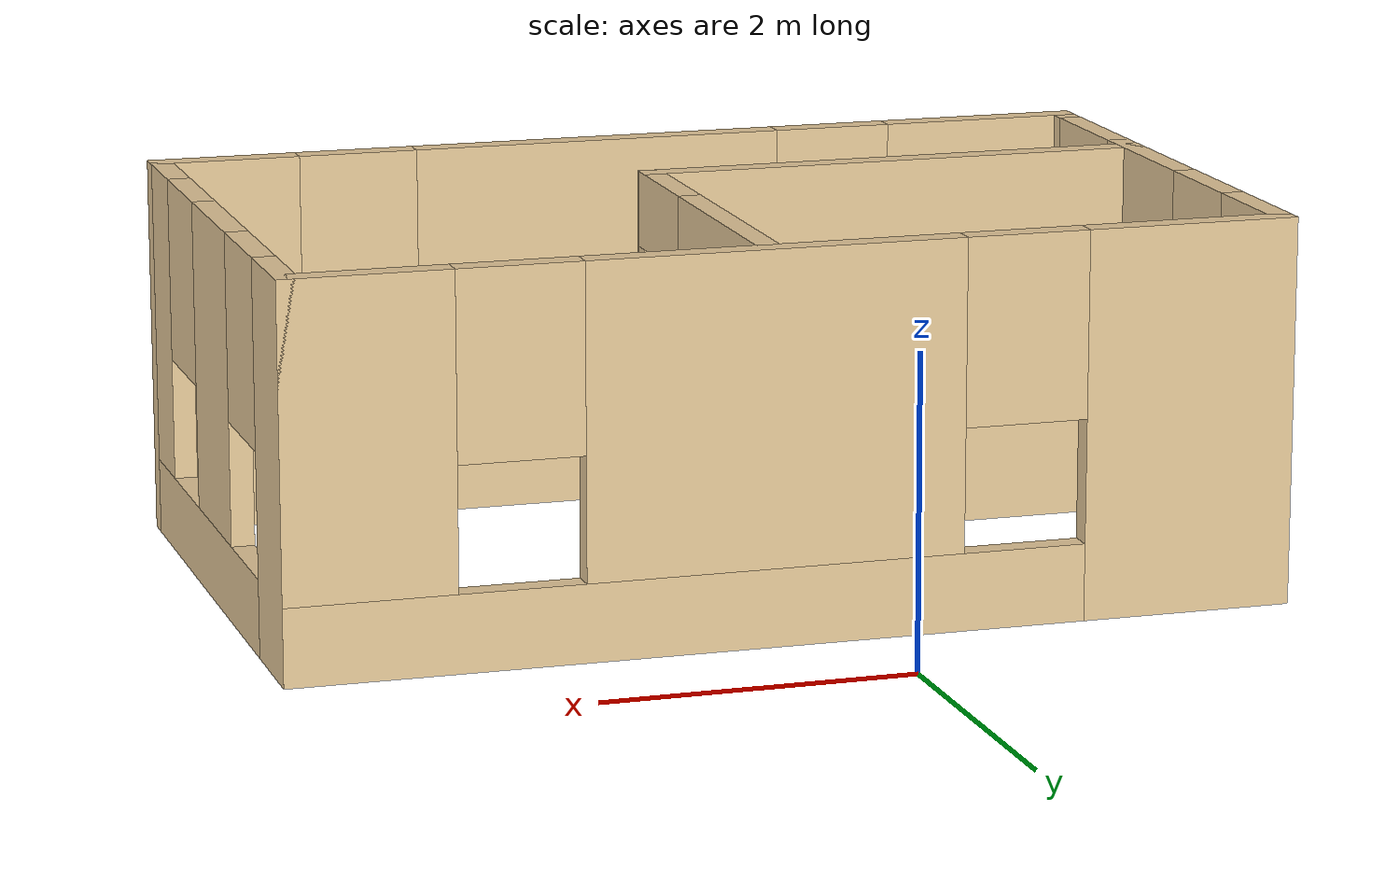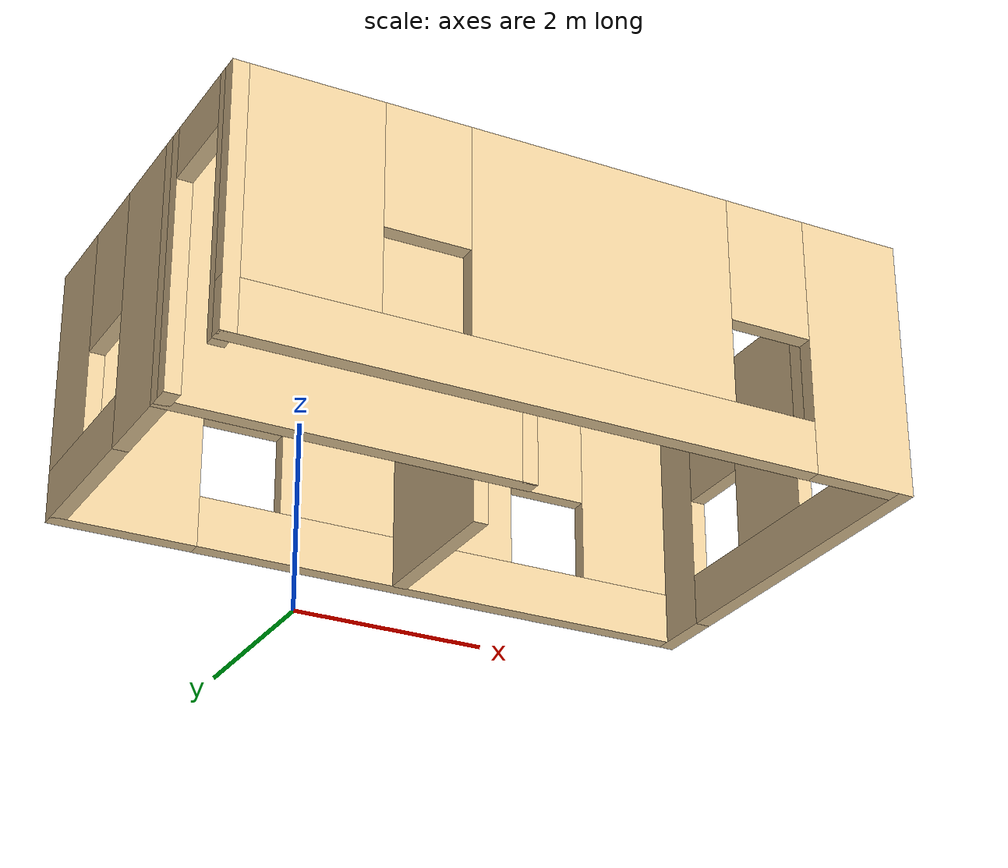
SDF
<?xml version='1.0'?>
<sdf version='1.7'>
  <model name='home'>
    <pose>0.475 -2.4125 0 0 -0 0</pose>
    <link name='Wall_0'>
      <pose>-0 1.5125 0 0 -0 0</pose>
      <visual name='Wall_0_Visual_0'>
        <pose>-2.5575 0 1.25 0 -0 0</pose>
        <geometry>
          <box>
            <size>1.385 0.15 2.5</size>
          </box>
        </geometry>
        <material>
          <script>
            <uri>file://media/materials/scripts/gazebo.material</uri>
            <name>Gazebo/Grey</name>
          </script>
          <ambient>0.921569 0.807843 0.615686 1</ambient>
        </material>
        <meta>
          <layer>0</layer>
        </meta>
      </visual>
      <collision name='Wall_0_Collision_0'>
        <geometry>
          <box>
            <size>1.385 0.15 2.5</size>
          </box>
        </geometry>
        <pose>-2.5575 0 1.25 0 -0 0</pose>
      </collision>
      <visual name='Wall_0_Visual_1'>
        <pose>0.6925 0 0.25 0 -0 0</pose>
        <geometry>
          <box>
            <size>5.115 0.15 0.5</size>
          </box>
        </geometry>
        <material>
          <script>
            <uri>file://media/materials/scripts/gazebo.material</uri>
            <name>Gazebo/Grey</name>
          </script>
          <ambient>0.921569 0.807843 0.615686 1</ambient>
        </material>
        <meta>
          <layer>0</layer>
        </meta>
      </visual>
      <collision name='Wall_0_Collision_1'>
        <geometry>
          <box>
            <size>5.115 0.15 0.5</size>
          </box>
        </geometry>
        <pose>0.6925 0 0.25 0 -0 0</pose>
      </collision>
      <visual name='Wall_0_Visual_2'>
        <pose>0.15 0 1.5 0 -0 0</pose>
        <geometry>
          <box>
            <size>2.43 0.15 2</size>
          </box>
        </geometry>
        <material>
          <script>
            <uri>file://media/materials/scripts/gazebo.material</uri>
            <name>Gazebo/Grey</name>
          </script>
          <ambient>0.921569 0.807843 0.615686 1</ambient>
        </material>
        <meta>
          <layer>0</layer>
        </meta>
      </visual>
      <collision name='Wall_0_Collision_2'>
        <geometry>
          <box>
            <size>2.43 0.15 2</size>
          </box>
        </geometry>
        <pose>0.15 0 1.5 0 -0 0</pose>
      </collision>
      <visual name='Wall_0_Visual_3'>
        <pose>2.7075 0 1.5 0 -0 0</pose>
        <geometry>
          <box>
            <size>1.085 0.15 2</size>
          </box>
        </geometry>
        <material>
          <script>
            <uri>file://media/materials/scripts/gazebo.material</uri>
            <name>Gazebo/Grey</name>
          </script>
          <ambient>0.921569 0.807843 0.615686 1</ambient>
        </material>
        <meta>
          <layer>0</layer>
        </meta>
      </visual>
      <collision name='Wall_0_Collision_3'>
        <geometry>
          <box>
            <size>1.085 0.15 2</size>
          </box>
        </geometry>
        <pose>2.7075 0 1.5 0 -0 0</pose>
      </collision>
      <visual name='Wall_0_Visual_4'>
        <pose>-1.465 0 1.9 0 -0 0</pose>
        <geometry>
          <box>
            <size>0.8 0.15 1.2</size>
          </box>
        </geometry>
        <material>
          <script>
            <uri>file://media/materials/scripts/gazebo.material</uri>
            <name>Gazebo/Grey</name>
          </script>
          <ambient>0.921569 0.807843 0.615686 1</ambient>
        </material>
        <meta>
          <layer>0</layer>
        </meta>
      </visual>
      <collision name='Wall_0_Collision_4'>
        <geometry>
          <box>
            <size>0.8 0.15 1.2</size>
          </box>
        </geometry>
        <pose>-1.465 0 1.9 0 -0 0</pose>
      </collision>
      <visual name='Wall_0_Visual_5'>
        <pose>1.765 0 1.9 0 -0 0</pose>
        <geometry>
          <box>
            <size>0.8 0.15 1.2</size>
          </box>
        </geometry>
        <material>
          <script>
            <uri>file://media/materials/scripts/gazebo.material</uri>
            <name>Gazebo/Grey</name>
          </script>
          <ambient>0.921569 0.807843 0.615686 1</ambient>
        </material>
        <meta>
          <layer>0</layer>
        </meta>
      </visual>
      <collision name='Wall_0_Collision_5'>
        <geometry>
          <box>
            <size>0.8 0.15 1.2</size>
          </box>
        </geometry>
        <pose>1.765 0 1.9 0 -0 0</pose>
      </collision>
    </link>
    <link name='Wall_1'>
      <pose>3.175 -0.4125 0 0 -0 -1.5708</pose>
      <visual name='Wall_1_Visual_0'>
        <pose>-1.6575 0 1.25 0 -0 0</pose>
        <geometry>
          <box>
            <size>0.685 0.15 2.5</size>
          </box>
        </geometry>
        <material>
          <script>
            <uri>file://media/materials/scripts/gazebo.material</uri>
            <name>Gazebo/Grey</name>
          </script>
          <ambient>0.921569 0.807843 0.615686 1</ambient>
        </material>
        <meta>
          <layer>0</layer>
        </meta>
      </visual>
      <collision name='Wall_1_Collision_0'>
        <geometry>
          <box>
            <size>0.685 0.15 2.5</size>
          </box>
        </geometry>
        <pose>-1.6575 0 1.25 0 -0 0</pose>
      </collision>
      <visual name='Wall_1_Visual_1'>
        <pose>0.3425 0 0.25 0 -0 0</pose>
        <geometry>
          <box>
            <size>3.315 0.15 0.5</size>
          </box>
        </geometry>
        <material>
          <script>
            <uri>file://media/materials/scripts/gazebo.material</uri>
            <name>Gazebo/Grey</name>
          </script>
          <ambient>0.921569 0.807843 0.615686 1</ambient>
        </material>
        <meta>
          <layer>0</layer>
        </meta>
      </visual>
      <collision name='Wall_1_Collision_1'>
        <geometry>
          <box>
            <size>3.315 0.15 0.5</size>
          </box>
        </geometry>
        <pose>0.3425 0 0.25 0 -0 0</pose>
      </collision>
      <visual name='Wall_1_Visual_2'>
        <pose>-0.005 0 1.5 0 -0 0</pose>
        <geometry>
          <box>
            <size>1.02 0.15 2</size>
          </box>
        </geometry>
        <material>
          <script>
            <uri>file://media/materials/scripts/gazebo.material</uri>
            <name>Gazebo/Grey</name>
          </script>
          <ambient>0.921569 0.807843 0.615686 1</ambient>
        </material>
        <meta>
          <layer>0</layer>
        </meta>
      </visual>
      <collision name='Wall_1_Collision_2'>
        <geometry>
          <box>
            <size>1.02 0.15 2</size>
          </box>
        </geometry>
        <pose>-0.005 0 1.5 0 -0 0</pose>
      </collision>
      <visual name='Wall_1_Visual_3'>
        <pose>1.6525 0 1.5 0 -0 0</pose>
        <geometry>
          <box>
            <size>0.695 0.15 2</size>
          </box>
        </geometry>
        <material>
          <script>
            <uri>file://media/materials/scripts/gazebo.material</uri>
            <name>Gazebo/Grey</name>
          </script>
          <ambient>0.921569 0.807843 0.615686 1</ambient>
        </material>
        <meta>
          <layer>0</layer>
        </meta>
      </visual>
      <collision name='Wall_1_Collision_3'>
        <geometry>
          <box>
            <size>0.695 0.15 2</size>
          </box>
        </geometry>
        <pose>1.6525 0 1.5 0 -0 0</pose>
      </collision>
      <visual name='Wall_1_Visual_4'>
        <pose>-0.915 0 1.9 0 -0 0</pose>
        <geometry>
          <box>
            <size>0.8 0.15 1.2</size>
          </box>
        </geometry>
        <material>
          <script>
            <uri>file://media/materials/scripts/gazebo.material</uri>
            <name>Gazebo/Grey</name>
          </script>
          <ambient>0.921569 0.807843 0.615686 1</ambient>
        </material>
        <meta>
          <layer>0</layer>
        </meta>
      </visual>
      <collision name='Wall_1_Collision_4'>
        <geometry>
          <box>
            <size>0.8 0.15 1.2</size>
          </box>
        </geometry>
        <pose>-0.915 0 1.9 0 -0 0</pose>
      </collision>
      <visual name='Wall_1_Visual_5'>
        <pose>0.905 0 1.9 0 -0 0</pose>
        <geometry>
          <box>
            <size>0.8 0.15 1.2</size>
          </box>
        </geometry>
        <material>
          <script>
            <uri>file://media/materials/scripts/gazebo.material</uri>
            <name>Gazebo/Grey</name>
          </script>
          <ambient>0.921569 0.807843 0.615686 1</ambient>
        </material>
        <meta>
          <layer>0</layer>
        </meta>
      </visual>
      <collision name='Wall_1_Collision_5'>
        <geometry>
          <box>
            <size>0.8 0.15 1.2</size>
          </box>
        </geometry>
        <pose>0.905 0 1.9 0 -0 0</pose>
      </collision>
    </link>
    <link name='Wall_2'>
      <pose>-0 -2.3375 0 0 -0 3.14159</pose>
      <visual name='Wall_2_Visual_0'>
        <pose>-2.7525 0 1.25 0 -0 0</pose>
        <geometry>
          <box>
            <size>0.995 0.15 2.5</size>
          </box>
        </geometry>
        <material>
          <script>
            <uri>file://media/materials/scripts/gazebo.material</uri>
            <name>Gazebo/Grey</name>
          </script>
          <ambient>0.921569 0.807843 0.615686 1</ambient>
        </material>
        <meta>
          <layer>0</layer>
        </meta>
      </visual>
      <collision name='Wall_2_Collision_0'>
        <geometry>
          <box>
            <size>0.995 0.15 2.5</size>
          </box>
        </geometry>
        <pose>-2.7525 0 1.25 0 -0 0</pose>
      </collision>
      <visual name='Wall_2_Visual_1'>
        <pose>0.4975 0 0.25 0 -0 0</pose>
        <geometry>
          <box>
            <size>5.505 0.15 0.5</size>
          </box>
        </geometry>
        <material>
          <script>
            <uri>file://media/materials/scripts/gazebo.material</uri>
            <name>Gazebo/Grey</name>
          </script>
          <ambient>0.921569 0.807843 0.615686 1</ambient>
        </material>
        <meta>
          <layer>0</layer>
        </meta>
      </visual>
      <collision name='Wall_2_Collision_1'>
        <geometry>
          <box>
            <size>5.505 0.15 0.5</size>
          </box>
        </geometry>
        <pose>0.4975 0 0.25 0 -0 0</pose>
      </collision>
      <visual name='Wall_2_Visual_2'>
        <pose>-0.19 0 1.5 0 -0 0</pose>
        <geometry>
          <box>
            <size>2.53 0.15 2</size>
          </box>
        </geometry>
        <material>
          <script>
            <uri>file://media/materials/scripts/gazebo.material</uri>
            <name>Gazebo/Grey</name>
          </script>
          <ambient>0.921569 0.807843 0.615686 1</ambient>
        </material>
        <meta>
          <layer>0</layer>
        </meta>
      </visual>
      <collision name='Wall_2_Collision_2'>
        <geometry>
          <box>
            <size>2.53 0.15 2</size>
          </box>
        </geometry>
        <pose>-0.19 0 1.5 0 -0 0</pose>
      </collision>
      <visual name='Wall_2_Visual_3'>
        <pose>2.5625 0 1.5 0 -0 0</pose>
        <geometry>
          <box>
            <size>1.375 0.15 2</size>
          </box>
        </geometry>
        <material>
          <script>
            <uri>file://media/materials/scripts/gazebo.material</uri>
            <name>Gazebo/Grey</name>
          </script>
          <ambient>0.921569 0.807843 0.615686 1</ambient>
        </material>
        <meta>
          <layer>0</layer>
        </meta>
      </visual>
      <collision name='Wall_2_Collision_3'>
        <geometry>
          <box>
            <size>1.375 0.15 2</size>
          </box>
        </geometry>
        <pose>2.5625 0 1.5 0 -0 0</pose>
      </collision>
      <visual name='Wall_2_Visual_4'>
        <pose>-1.855 0 1.9 0 -0 0</pose>
        <geometry>
          <box>
            <size>0.8 0.15 1.2</size>
          </box>
        </geometry>
        <material>
          <script>
            <uri>file://media/materials/scripts/gazebo.material</uri>
            <name>Gazebo/Grey</name>
          </script>
          <ambient>0.921569 0.807843 0.615686 1</ambient>
        </material>
        <meta>
          <layer>0</layer>
        </meta>
      </visual>
      <collision name='Wall_2_Collision_4'>
        <geometry>
          <box>
            <size>0.8 0.15 1.2</size>
          </box>
        </geometry>
        <pose>-1.855 0 1.9 0 -0 0</pose>
      </collision>
      <visual name='Wall_2_Visual_5'>
        <pose>1.475 0 1.9 0 -0 0</pose>
        <geometry>
          <box>
            <size>0.8 0.15 1.2</size>
          </box>
        </geometry>
        <material>
          <script>
            <uri>file://media/materials/scripts/gazebo.material</uri>
            <name>Gazebo/Grey</name>
          </script>
          <ambient>0.921569 0.807843 0.615686 1</ambient>
        </material>
        <meta>
          <layer>0</layer>
        </meta>
      </visual>
      <collision name='Wall_2_Collision_5'>
        <geometry>
          <box>
            <size>0.8 0.15 1.2</size>
          </box>
        </geometry>
        <pose>1.475 0 1.9 0 -0 0</pose>
      </collision>
    </link>
    <link name='Wall_3'>
      <pose>-3.175 -0.4125 0 0 -0 1.5708</pose>
      <visual name='Wall_3_Visual_0'>
        <pose>-1.8725 0 1.25 0 -0 0</pose>
        <geometry>
          <box>
            <size>0.255 0.15 2.5</size>
          </box>
        </geometry>
        <material>
          <script>
            <uri>file://media/materials/scripts/gazebo.material</uri>
            <name>Gazebo/Grey</name>
          </script>
          <ambient>0.921569 0.807843 0.615686 1</ambient>
        </material>
        <meta>
          <layer>0</layer>
        </meta>
      </visual>
      <collision name='Wall_3_Collision_0'>
        <geometry>
          <box>
            <size>0.255 0.15 2.5</size>
          </box>
        </geometry>
        <pose>-1.8725 0 1.25 0 -0 0</pose>
      </collision>
      <visual name='Wall_3_Visual_1'>
        <pose>-0.26 0 1.25 0 -0 0</pose>
        <geometry>
          <box>
            <size>1.17 0.15 2.5</size>
          </box>
        </geometry>
        <material>
          <script>
            <uri>file://media/materials/scripts/gazebo.material</uri>
            <name>Gazebo/Grey</name>
          </script>
          <ambient>0.921569 0.807843 0.615686 1</ambient>
        </material>
        <meta>
          <layer>0</layer>
        </meta>
      </visual>
      <collision name='Wall_3_Collision_1'>
        <geometry>
          <box>
            <size>1.17 0.15 2.5</size>
          </box>
        </geometry>
        <pose>-0.26 0 1.25 0 -0 0</pose>
      </collision>
      <visual name='Wall_3_Visual_2'>
        <pose>1.1625 0 0.25 0 -0 0</pose>
        <geometry>
          <box>
            <size>1.675 0.15 0.5</size>
          </box>
        </geometry>
        <material>
          <script>
            <uri>file://media/materials/scripts/gazebo.material</uri>
            <name>Gazebo/Grey</name>
          </script>
          <ambient>0.921569 0.807843 0.615686 1</ambient>
        </material>
        <meta>
          <layer>0</layer>
        </meta>
      </visual>
      <collision name='Wall_3_Collision_2'>
        <geometry>
          <box>
            <size>1.675 0.15 0.5</size>
          </box>
        </geometry>
        <pose>1.1625 0 0.25 0 -0 0</pose>
      </collision>
      <visual name='Wall_3_Visual_3'>
        <pose>1.5625 0 1.5 0 -0 0</pose>
        <geometry>
          <box>
            <size>0.875 0.15 2</size>
          </box>
        </geometry>
        <material>
          <script>
            <uri>file://media/materials/scripts/gazebo.material</uri>
            <name>Gazebo/Grey</name>
          </script>
          <ambient>0.921569 0.807843 0.615686 1</ambient>
        </material>
        <meta>
          <layer>0</layer>
        </meta>
      </visual>
      <collision name='Wall_3_Collision_3'>
        <geometry>
          <box>
            <size>0.875 0.15 2</size>
          </box>
        </geometry>
        <pose>1.5625 0 1.5 0 -0 0</pose>
      </collision>
      <visual name='Wall_3_Visual_4'>
        <pose>0.725 0 1.9 0 -0 0</pose>
        <geometry>
          <box>
            <size>0.8 0.15 1.2</size>
          </box>
        </geometry>
        <material>
          <script>
            <uri>file://media/materials/scripts/gazebo.material</uri>
            <name>Gazebo/Grey</name>
          </script>
          <ambient>0.921569 0.807843 0.615686 1</ambient>
        </material>
        <meta>
          <layer>0</layer>
        </meta>
      </visual>
      <collision name='Wall_3_Collision_4'>
        <geometry>
          <box>
            <size>0.8 0.15 1.2</size>
          </box>
        </geometry>
        <pose>0.725 0 1.9 0 -0 0</pose>
      </collision>
      <visual name='Wall_3_Visual_5'>
        <pose>-1.295 0 2.25 0 -0 0</pose>
        <geometry>
          <box>
            <size>0.9 0.15 0.5</size>
          </box>
        </geometry>
        <material>
          <script>
            <uri>file://media/materials/scripts/gazebo.material</uri>
            <name>Gazebo/Grey</name>
          </script>
          <ambient>0.921569 0.807843 0.615686 1</ambient>
        </material>
        <meta>
          <layer>0</layer>
        </meta>
      </visual>
      <collision name='Wall_3_Collision_5'>
        <geometry>
          <box>
            <size>0.9 0.15 0.5</size>
          </box>
        </geometry>
        <pose>-1.295 0 2.25 0 -0 0</pose>
      </collision>
    </link>
    <link name='Wall_5'>
      <collision name='Wall_5_Collision'>
        <geometry>
          <box>
            <size>3.5 0.15 2.5</size>
          </box>
        </geometry>
        <pose>0 0 1.25 0 -0 0</pose>
      </collision>
      <visual name='Wall_5_Visual'>
        <pose>0 0 1.25 0 -0 0</pose>
        <geometry>
          <box>
            <size>3.5 0.15 2.5</size>
          </box>
        </geometry>
        <material>
          <script>
            <uri>file://media/materials/scripts/gazebo.material</uri>
            <name>Gazebo/Grey</name>
          </script>
          <ambient>0.921569 0.807843 0.615686 1</ambient>
        </material>
        <meta>
          <layer>0</layer>
        </meta>
      </visual>
      <pose>-1.5 -1.0375 0 0 -0 0</pose>
    </link>
    <link name='Wall_6'>
      <pose>0.175 0.1675 0 0 -0 1.5708</pose>
      <visual name='Wall_6_Visual_0'>
        <pose>-1.27301 0 1.25 0 -0 0</pose>
        <geometry>
          <box>
            <size>0.013982 0.15 2.5</size>
          </box>
        </geometry>
        <material>
          <script>
            <uri>file://media/materials/scripts/gazebo.material</uri>
            <name>Gazebo/Grey</name>
          </script>
          <ambient>0.921569 0.807843 0.615686 1</ambient>
        </material>
        <meta>
          <layer>0</layer>
        </meta>
      </visual>
      <collision name='Wall_6_Collision_0'>
        <geometry>
          <box>
            <size>0.013982 0.15 2.5</size>
          </box>
        </geometry>
        <pose>-1.27301 0 1.25 0 -0 0</pose>
      </collision>
      <visual name='Wall_6_Visual_1'>
        <pose>0.456991 0 1.25 0 -0 0</pose>
        <geometry>
          <box>
            <size>1.64602 0.15 2.5</size>
          </box>
        </geometry>
        <material>
          <script>
            <uri>file://media/materials/scripts/gazebo.material</uri>
            <name>Gazebo/Grey</name>
          </script>
          <ambient>0.921569 0.807843 0.615686 1</ambient>
        </material>
        <meta>
          <layer>0</layer>
        </meta>
      </visual>
      <collision name='Wall_6_Collision_1'>
        <geometry>
          <box>
            <size>1.64602 0.15 2.5</size>
          </box>
        </geometry>
        <pose>0.456991 0 1.25 0 -0 0</pose>
      </collision>
      <visual name='Wall_6_Visual_2'>
        <pose>-0.816018 0 2.25 0 -0 0</pose>
        <geometry>
          <box>
            <size>0.9 0.15 0.5</size>
          </box>
        </geometry>
        <material>
          <script>
            <uri>file://media/materials/scripts/gazebo.material</uri>
            <name>Gazebo/Grey</name>
          </script>
          <ambient>0.921569 0.807843 0.615686 1</ambient>
        </material>
        <meta>
          <layer>0</layer>
        </meta>
      </visual>
      <collision name='Wall_6_Collision_2'>
        <geometry>
          <box>
            <size>0.9 0.15 0.5</size>
          </box>
        </geometry>
        <pose>-0.816018 0 2.25 0 -0 0</pose>
      </collision>
    </link>
    <static>1</static>
  </model>
</sdf>
